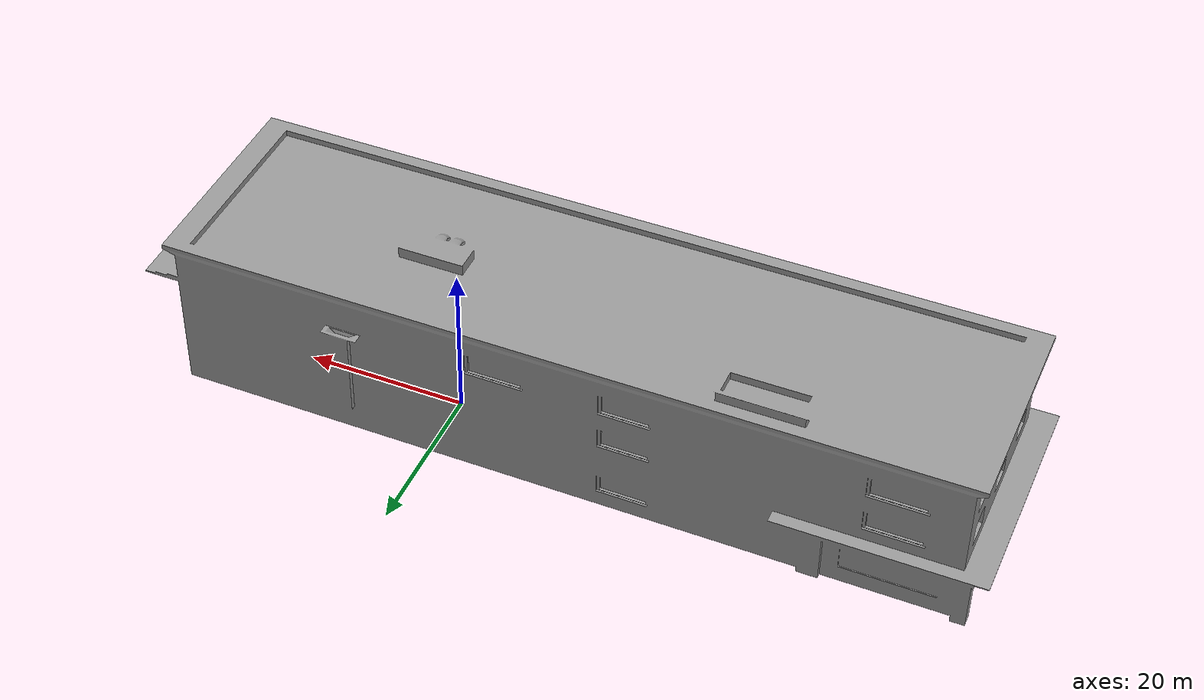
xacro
<?xml version="1.0"?>

<robot name="old_building" xmlns:xacro="http://ros.org/wiki/xacro">

  <link name="world"></link>

    <link name='old_building_base'>

      <inertial>
        <mass value="500000" />
        <origin rpy="0 0 0" xyz="0 0 0"/>
        <inertia
          ixx="6.71747915" ixy="0.00002148" ixz="-0.00000024"
          iyx="0.00002148" iyy="6.71747915" iyz="-0.17180670"
          izx="-0.00000024" izy="0" izz="6.71747915"/>
      </inertial>

      <visual>
        <origin xyz="0 0 0" rpy="0 0 0" />
        <geometry>
           <mesh filename="package://uav_frontier_exploration_3d/models/old_building/meshes/building.dae"
            scale="15 8 4" />
        </geometry>
      </visual>

      <collision name='collision'>
        <origin xyz="0 0 0" rpy="0 0 0"/>
        <geometry>
           <mesh filename="package://uav_frontier_exploration_3d/models/old_building/meshes/building.dae"
            scale="15 8 4" />
        </geometry>
      </collision>
    </link>

    <joint name="joint_old_building_base" type="fixed">
        <origin xyz="0 0 5" rpy="0 0 0"/>
        <parent link="world"/>
        <child link="old_building_base"/>
    </joint>

  <gazebo reference="old_building_base">
    <material>Gazebo/Grey</material>
  </gazebo>
  <gazebo>
    <static>true</static>
  </gazebo>

</robot>
